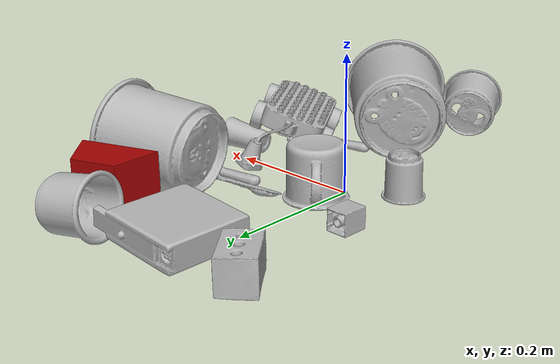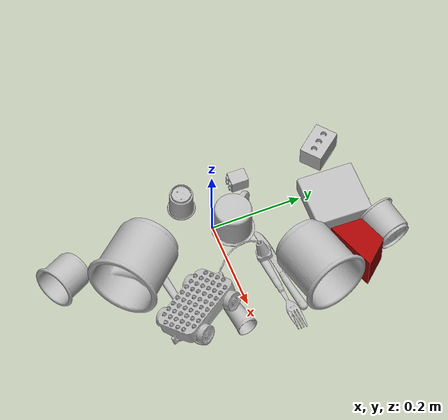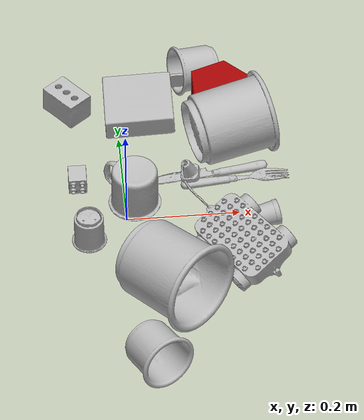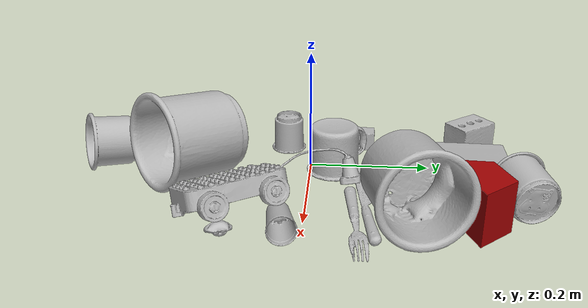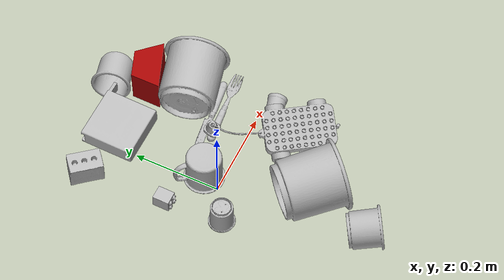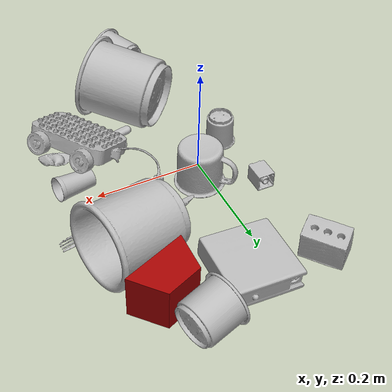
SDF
<sdf version="1.4">
  <world name="default">
    <light name="light1" type="point">
      <pose>0 0 1 0 0 0</pose>
      <diffuse>3 3 3 1</diffuse>
      <specular>3 3 3 1</specular>
    </light>
    <light name="light2" type="point">
      <pose>0 0.5 2 0 0 0</pose>
      <diffuse>1 1 1 1</diffuse>
      <specular>1 1 1 1</specular>
    </light>
    <light name="light3" type="point">
      <pose>0 0.5 2 0 0 0</pose>
      <diffuse>3 3 3 1</diffuse>
      <specular>3 3 3 1</specular>
    </light>
    <scene>
      <ambient>0.7 0.7 0.7</ambient>
    </scene>
    <model name="cup1">
      <link name="link_cup1">
        <collision name="default">
          <geometry>
            <mesh>
              <uri>model://i_cups/collision_meshes/collision.obj</uri>
              <scale>1.0 1.0 1.0</scale>
            </mesh>
          </geometry>
          <surface>
            <friction>
              <ode>
                <mu>0.5</mu>
                <mu2>0.5</mu2>
              </ode>
            </friction>
          <contact>
        <ode>
            <max_vel>0</max_vel>
            <min_depth>0.0001</min_depth>
            <kp>1e8</kp>
        </ode>
    </contact></surface>
        </collision>
        <visual name="default">
          <geometry>
            <mesh>
              <uri>model://i_cups/visual_meshes/visual.dae</uri>
              <scale>1.0 1.0 1.0</scale>
            </mesh>
          </geometry>
        </visual>
        <inertial>
          <mass>0.06118306145071983</mass>
          <pose>0.00011240330786677077 0.00016797454736661166 -0.0008579033892601728 -0.02898356853937009 -0.0398729445813228 -0.3459020996231002</pose>
          <inertia>
            <ixx>8.470886e-05</ixx>
            <iyy>8.5455235e-05</iyy>
            <izz>9.467588e-05</izz>
            <ixy>0</ixy>
            <ixz>0</ixz>
            <iyz>0</iyz>
          </inertia>
        </inertial>
      </link>
      <pose>0.023984933272004128 -0.3410205841064453 0.0448826402425766 -1.4534786258669343 0.06790330450709484 -2.6246267968031316</pose>
    </model>
    <model name="silverware1">
      <link name="link_silverware1">
        <collision name="default">
          <geometry>
            <mesh>
              <uri>model://fork/collision_meshes/collision.obj</uri>
              <scale>1.0 1.0 1.0</scale>
            </mesh>
          </geometry>
          <surface>
            <friction>
              <ode>
                <mu>0.5</mu>
                <mu2>0.5</mu2>
              </ode>
            </friction>
          <contact>
        <ode>
            <max_vel>0</max_vel>
            <min_depth>0.0001</min_depth>
            <kp>1e8</kp>
        </ode>
    </contact></surface>
        </collision>
        <visual name="default">
          <geometry>
            <mesh>
              <uri>model://fork/visual_meshes/visual.dae</uri>
              <scale>1.0 1.0 1.0</scale>
            </mesh>
          </geometry>
        </visual>
        <inertial>
          <mass>0.031184576451778412</mass>
          <pose>-0.02957005426287651 0.00046588247641921043 0.0003218861820641905 -0.013551007459636681 -0.010977840933376642 0.014453907264632249</pose>
          <inertia>
            <ixx>1.0931959e-06</ixx>
            <iyy>8.1413935e-05</iyy>
            <izz>8.1902916e-05</izz>
            <ixy>0</ixy>
            <ixz>0</ixz>
            <iyz>0</iyz>
          </inertia>
        </inertial>
      </link>
      <pose>0.19987256824970245 0.07823167741298676 0.007446604780852795 -3.0635083059822805 0.002835698766743994 0.09765352093938312</pose>
    </model>
    <model name="cup2">
      <link name="link_cup2">
        <collision name="default">
          <geometry>
            <mesh>
              <uri>model://cup_small/collision_meshes/collision.obj</uri>
              <scale>1.0 1.0 1.0</scale>
            </mesh>
          </geometry>
          <surface>
            <friction>
              <ode>
                <mu>0.5</mu>
                <mu2>0.5</mu2>
              </ode>
            </friction>
          <contact>
        <ode>
            <max_vel>0</max_vel>
            <min_depth>0.0001</min_depth>
            <kp>1e8</kp>
        </ode>
    </contact></surface>
        </collision>
        <visual name="default">
          <geometry>
            <mesh>
              <uri>model://cup_small/visual_meshes/visual.dae</uri>
              <scale>1.0 1.0 1.0</scale>
            </mesh>
          </geometry>
        </visual>
        <inertial>
          <mass>0.03407767415046692</mass>
          <pose>0.0001048250705935061 -0.00033778452780097723 -0.010742825455963612 -0.011493231776776816 -0.015280154496379641 -0.5058119732839097</pose>
          <inertia>
            <ixx>2.0064415e-05</ixx>
            <iyy>2.0167918e-05</iyy>
            <izz>9.059144e-06</izz>
            <ixy>0</ixy>
            <ixz>0</ixz>
            <iyz>0</iyz>
          </inertia>
        </inertial>
      </link>
      <pose>0.23066630959510803 -0.0308545995503664 0.020199526101350784 -1.246867433727337 -1.308376111507261 -1.6937306329520936</pose>
    </model>
    <model name="silverware2">
      <link name="link_silverware2">
        <collision name="default">
          <geometry>
            <mesh>
              <uri>model://spoon/collision_meshes/collision.obj</uri>
              <scale>1.0 1.0 1.0</scale>
            </mesh>
          </geometry>
          <surface>
            <friction>
              <ode>
                <mu>0.5</mu>
                <mu2>0.5</mu2>
              </ode>
            </friction>
          <contact>
        <ode>
            <max_vel>0</max_vel>
            <min_depth>0.0001</min_depth>
            <kp>1e8</kp>
        </ode>
    </contact></surface>
        </collision>
        <visual name="default">
          <geometry>
            <mesh>
              <uri>model://spoon/visual_meshes/visual.dae</uri>
              <scale>1.0 1.0 1.0</scale>
            </mesh>
          </geometry>
        </visual>
        <inertial>
          <mass>0.016614587977528572</mass>
          <pose>-0.005526317749172449 -0.0016034182626754045 -0.0007271657232195139 0.03521671066550848 -0.039065848782153245 0.0061506117821598484</pose>
          <inertia>
            <ixx>9.241303e-07</ixx>
            <iyy>6.321795e-05</iyy>
            <izz>6.367369e-05</izz>
            <ixy>0</ixy>
            <ixz>0</ixz>
            <iyz>0</iyz>
          </inertia>
        </inertial>
      </link>
      <pose>0.17396384477615356 -0.12731124460697174 0.00838526152074337 0.006731799165566127 0.026892982971795036 0.14841687787873523</pose>
    </model>
    <model name="cup3">
      <link name="link_cup3">
        <collision name="default">
          <geometry>
            <mesh>
              <uri>model://mug/collision_meshes/collision.obj</uri>
              <scale>1.0 1.0 1.0</scale>
            </mesh>
          </geometry>
          <surface>
            <friction>
              <ode>
                <mu>0.5</mu>
                <mu2>0.5</mu2>
              </ode>
            </friction>
          <contact>
        <ode>
            <max_vel>0</max_vel>
            <min_depth>0.0001</min_depth>
            <kp>1e8</kp>
        </ode>
    </contact></surface>
        </collision>
        <visual name="default">
          <geometry>
            <mesh>
              <uri>model://mug/visual_meshes/visual.dae</uri>
              <scale>1.0 1.0 1.0</scale>
            </mesh>
          </geometry>
        </visual>
        <inertial>
          <mass>0.2187051922082901</mass>
          <pose>0.009571668691933155 0.0008143252925947309 -0.0109473317861557 -0.1298317614392908 0.08737757629698793 0.05507296169044089</pose>
          <inertia>
            <ixx>0.00021724429</ixx>
            <iyy>0.00024264908</iyy>
            <izz>0.00028062687</izz>
            <ixy>0</ixy>
            <ixz>0</ixz>
            <iyz>0</iyz>
          </inertia>
        </inertial>
      </link>
      <pose>0.009823460131883621 0.04970918595790863 0.04095802456140518 -3.1415925762280463 1.1376814000553074e-07 -0.8026903045059199</pose>
    </model>
    <model name="silverware3">
      <link name="link_silverware3">
        <collision name="default">
          <geometry>
            <mesh>
              <uri>model://knife/collision_meshes/collision.obj</uri>
              <scale>1.0 1.0 1.0</scale>
            </mesh>
          </geometry>
          <surface>
            <friction>
              <ode>
                <mu>0.5</mu>
                <mu2>0.5</mu2>
              </ode>
            </friction>
          <contact>
        <ode>
            <max_vel>0</max_vel>
            <min_depth>0.0001</min_depth>
            <kp>1e8</kp>
        </ode>
    </contact></surface>
        </collision>
        <visual name="default">
          <geometry>
            <mesh>
              <uri>model://knife/visual_meshes/visual.dae</uri>
              <scale>1.0 1.0 1.0</scale>
            </mesh>
          </geometry>
        </visual>
        <inertial>
          <mass>0.02527560666203499</mass>
          <pose>-0.02378525398671627 0.0015275124460458755 5.062016498413868e-05 0.07305987488321217 0.01724841707462807 -0.007409821427235137</pose>
          <inertia>
            <ixx>7.174241e-07</ixx>
            <iyy>9.710476e-05</iyy>
            <izz>9.733581e-05</izz>
            <ixy>0</ixy>
            <ixz>0</ixz>
            <iyz>0</iyz>
          </inertia>
        </inertial>
      </link>
      <pose>0.15397314727306366 0.09536176174879074 0.0081368088722229 -0.28174923345852976 -0.00887165238045548 -3.0138020908159313</pose>
    </model>
    <model name="cup4">
      <link name="link_cup4">
        <collision name="default">
          <geometry>
            <mesh>
              <uri>model://f_cups/collision_meshes/collision.obj</uri>
              <scale>2.0 2.0 2.0</scale>
            </mesh>
          </geometry>
          <surface>
            <friction>
              <ode>
                <mu>0.5</mu>
                <mu2>0.5</mu2>
              </ode>
            </friction>
          <contact>
        <ode>
            <max_vel>0</max_vel>
            <min_depth>0.0001</min_depth>
            <kp>1e8</kp>
        </ode>
    </contact></surface>
        </collision>
        <visual name="default">
          <geometry>
            <mesh>
              <uri>model://f_cups/visual_meshes/visual.dae</uri>
              <scale>2.0 2.0 2.0</scale>
            </mesh>
          </geometry>
        </visual>
        <inertial>
          <mass>0.45639780163764954</mass>
          <pose>-0.006342936772853136 -0.0012480145087465644 -0.007311072666198015 0.7862311529960513 -0.2607925047248709 -0.18237200478465204</pose>
          <inertia>
            <ixx>0.0017161043</ixx>
            <iyy>0.0018002132</iyy>
            <izz>0.0018740727</izz>
            <ixy>0</ixy>
            <ixz>0</ixz>
            <iyz>0</iyz>
          </inertia>
        </inertial>
      </link>
      <pose>0.061430759727954865 -0.19339397549629211 0.07437169551849365 -0.550906856239602 -1.4612377477990888 2.8685652260772128</pose>
    </model>
    <model name="cup41">
      <link name="link_cup41">
        <collision name="default">
          <geometry>
            <mesh>
              <uri>model://b_cups/collision_meshes/collision.obj</uri>
              <scale>1.0 1.0 1.0</scale>
            </mesh>
          </geometry>
          <surface>
            <friction>
              <ode>
                <mu>0.5</mu>
                <mu2>0.5</mu2>
              </ode>
            </friction>
          <contact>
        <ode>
            <max_vel>0</max_vel>
            <min_depth>0.0001</min_depth>
            <kp>1e8</kp>
        </ode>
    </contact></surface>
        </collision>
        <visual name="default">
          <geometry>
            <mesh>
              <uri>model://b_cups/visual_meshes/visual.dae</uri>
              <scale>1.0 1.0 1.0</scale>
            </mesh>
          </geometry>
        </visual>
        <inertial>
          <mass>0.02191556617617607</mass>
          <pose>0.0005182005115784705 0.0018058598507195711 -0.0013381809694692492 0.11356347292067202 0.038725069075056226 -0.34569439603942165</pose>
          <inertia>
            <ixx>1.4345273e-05</ixx>
            <iyy>1.4072923e-05</iyy>
            <izz>1.2071279e-05</izz>
            <ixy>0</ixy>
            <ixz>0</ixz>
            <iyz>0</iyz>
          </inertia>
        </inertial>
      </link>
      <pose>-0.06858638674020767 -0.04432455077767372 0.03215507045388222 3.141582657036547 3.7445203853732222e-06 2.3700459230966295</pose>
    </model>
    <model name="cup5">
      <link name="link_cup5">
        <collision name="default">
          <geometry>
            <mesh>
              <uri>model://e_cups/collision_meshes/collision.obj</uri>
              <scale>2.0 2.0 2.0</scale>
            </mesh>
          </geometry>
          <surface>
            <friction>
              <ode>
                <mu>0.5</mu>
                <mu2>0.5</mu2>
              </ode>
            </friction>
          <contact>
        <ode>
            <max_vel>0</max_vel>
            <min_depth>0.0001</min_depth>
            <kp>1e8</kp>
        </ode>
    </contact></surface>
        </collision>
        <visual name="default">
          <geometry>
            <mesh>
              <uri>model://e_cups/visual_meshes/visual.dae</uri>
              <scale>2.0 2.0 2.0</scale>
            </mesh>
          </geometry>
        </visual>
        <inertial>
          <mass>0.30448246002197266</mass>
          <pose>0.0022711469791829586 0.005759572610259056 -0.00776594178751111 0.6952384510578399 0.08767941436067322 -0.5235260729612989</pose>
          <inertia>
            <ixx>0.0010739095</ixx>
            <iyy>0.001122389</iyy>
            <izz>0.0010267813</izz>
            <ixy>0</ixy>
            <ixz>0</ixz>
            <iyz>0</iyz>
          </inertia>
        </inertial>
      </link>
      <pose>0.19590112566947937 0.15994280576705933 0.06980304419994354 1.298858405585547 1.2530543600741362 1.5570173361649433</pose>
    </model>
    <model name="cup51">
      <link name="link_cup51">
        <collision name="default">
          <geometry>
            <mesh>
              <uri>model://h_cups/collision_meshes/collision.obj</uri>
              <scale>1.0 1.0 1.0</scale>
            </mesh>
          </geometry>
          <surface>
            <friction>
              <ode>
                <mu>0.5</mu>
                <mu2>0.5</mu2>
              </ode>
            </friction>
          <contact>
        <ode>
            <max_vel>0</max_vel>
            <min_depth>0.0001</min_depth>
            <kp>1e8</kp>
        </ode>
    </contact></surface>
        </collision>
        <visual name="default">
          <geometry>
            <mesh>
              <uri>model://h_cups/visual_meshes/visual.dae</uri>
              <scale>1.0 1.0 1.0</scale>
            </mesh>
          </geometry>
        </visual>
        <inertial>
          <mass>0.042455922812223434</mass>
          <pose>-2.703044083318673e-05 0.00023018660431262106 -0.0018405403243377805 -0.024361995264993386 0.06545231449212868 0.1288536550905752</pose>
          <inertia>
            <ixx>5.4829856e-05</ixx>
            <iyy>5.4175573e-05</iyy>
            <izz>5.7501496e-05</izz>
            <ixy>0</ixy>
            <ixz>0</ixz>
            <iyz>0</iyz>
          </inertia>
        </inertial>
      </link>
      <pose>0.15049311518669128 0.33359605073928833 0.04239671677350998 -0.7905210139745811 -1.4206910989226373 1.0630295746629195</pose>
    </model>
    <model name="toy1">
      <link name="link_toy1">
        <collision name="default">
          <geometry>
            <mesh>
              <uri>model://f_lego_duplo/collision_meshes/collision.obj</uri>
              <scale>1.0 1.0 1.0</scale>
            </mesh>
          </geometry>
          <surface>
            <friction>
              <ode>
                <mu>0.5</mu>
                <mu2>0.5</mu2>
              </ode>
            </friction>
          <contact>
        <ode>
            <max_vel>0</max_vel>
            <min_depth>0.0001</min_depth>
            <kp>1e8</kp>
        </ode>
    </contact></surface>
        </collision>
        <visual name="default">
          <geometry>
            <mesh>
              <uri>model://f_lego_duplo/visual_meshes/visual.dae</uri>
              <scale>1.0 1.0 1.0</scale>
            </mesh>
          </geometry>
        </visual>
        <inertial>
          <mass>0.02241816557943821</mass>
          <pose>2.3694117771810852e-05 0.0001339316659141332 0.0018837875686585903 0.029838520561624126 -0.014425134948969536 -0.6756620822172864</pose>
          <inertia>
            <ixx>4.7370827e-06</ixx>
            <iyy>4.779284e-06</iyy>
            <izz>4.1119874e-06</izz>
            <ixy>0</ixy>
            <ixz>0</ixz>
            <iyz>0</iyz>
          </inertia>
        </inertial>
      </link>
      <pose>-0.08111685514450073 0.08879052847623825 0.016207220032811165 1.5789870798869279 0.00015286266785618672 -0.005625284331358153</pose>
    </model>
    <model name="toy2">
      <link name="link_toy2">
        <collision name="default">
          <geometry>
            <mesh>
              <uri>model://nine_hole_peg_test/collision_meshes/collision.obj</uri>
              <scale>1.0 1.0 1.0</scale>
            </mesh>
          </geometry>
          <surface>
            <friction>
              <ode>
                <mu>0.5</mu>
                <mu2>0.5</mu2>
              </ode>
            </friction>
          <contact>
        <ode>
            <max_vel>0</max_vel>
            <min_depth>0.0001</min_depth>
            <kp>1e8</kp>
        </ode>
    </contact></surface>
        </collision>
        <visual name="default">
          <geometry>
            <mesh>
              <uri>model://nine_hole_peg_test/visual_meshes/visual.dae</uri>
              <scale>1.0 1.0 1.0</scale>
            </mesh>
          </geometry>
        </visual>
        <inertial>
          <mass>0.9336897134780884</mass>
          <pose>-0.004617386497557163 -0.009647615253925323 2.6460686058271676e-05 -0.0014666796876693252 0.0007194179493738156 -0.6342417556307235</pose>
          <inertia>
            <ixx>0.0014599775</ixx>
            <iyy>0.0013631656</iyy>
            <izz>0.0025583105</izz>
            <ixy>0</ixy>
            <ixz>0</ixz>
            <iyz>0</iyz>
          </inertia>
        </inertial>
      </link>
      <pose>0.05201655626296997 0.26960280537605286 0.02459060400724411 3.0884309084332275 -0.00044033011699854123 1.5423079995419555</pose>
    </model>
    <model name="toy3">
      <link name="link_toy3">
        <collision name="default">
          <geometry>
            <mesh>
              <uri>model://prism/collision_meshes/collision.obj</uri>
              <scale>1.0 1.0 1.0</scale>
            </mesh>
          </geometry>
          <surface>
            <friction>
              <ode>
                <mu>0.5</mu>
                <mu2>0.5</mu2>
              </ode>
            </friction>
          <contact>
        <ode>
            <max_vel>0</max_vel>
            <min_depth>0.0001</min_depth>
            <kp>1e8</kp>
        </ode>
    </contact></surface>
        </collision>
        <visual name="default">
          <geometry>
            <mesh>
              <uri>model://prism/visual_meshes/visual.dae</uri>
              <scale>1.0 1.0 1.0</scale>
            </mesh>
          </geometry>
        </visual>
        <inertial>
          <mass>0.45664992928504944</mass>
          <pose>-9.85359656624496e-05 -4.96157269935793e-07 -0.0033869100734591484 0.0 0.006559178903460961 0.0</pose>
          <inertia>
            <ixx>0.0004121209</ixx>
            <iyy>0.00049805344</iyy>
            <izz>0.0006100559</izz>
            <ixy>0</ixy>
            <ixz>0</ixz>
            <iyz>0</iyz>
          </inertia>
        </inertial>
      </link>
      <pose>0.1829337626695633 0.2641875445842743 0.04158852621912956 1.583636583109559 9.076387257057084e-07 -2.778773767933062</pose>
    </model>
    <model name="toy4">
      <link name="link_toy4">
        <collision name="default">
          <geometry>
            <mesh>
              <uri>model://g_lego_duplo/collision_meshes/collision.obj</uri>
              <scale>1.0 1.0 1.0</scale>
            </mesh>
          </geometry>
          <surface>
            <friction>
              <ode>
                <mu>0.5</mu>
                <mu2>0.5</mu2>
              </ode>
            </friction>
          <contact>
        <ode>
            <max_vel>0</max_vel>
            <min_depth>0.0001</min_depth>
            <kp>1e8</kp>
        </ode>
    </contact></surface>
        </collision>
        <visual name="default">
          <geometry>
            <mesh>
              <uri>model://g_lego_duplo/visual_meshes/visual.dae</uri>
              <scale>1.0 1.0 1.0</scale>
            </mesh>
          </geometry>
        </visual>
        <inertial>
          <mass>0.39620378613471985</mass>
          <pose>-0.05004769191145897 0.0017554654041305184 0.003880677744746208 0.010963058510667364 0.03810828654928447 -0.09653021192595126</pose>
          <inertia>
            <ixx>0.0005741041</ixx>
            <iyy>0.0017357017</iyy>
            <izz>0.0021714251</izz>
            <ixy>0</ixy>
            <ixz>0</ixz>
            <iyz>0</iyz>
          </inertia>
        </inertial>
      </link>
      <pose>0.1629035770893097 -0.05715494975447655 0.04911036789417267 -0.34047435514227026 1.165936868478507e-05 2.1553880012276494</pose>
    </model>
    <model name="toy5">
      <link name="link_toy5">
        <collision name="default">
          <geometry>
            <mesh>
              <uri>model://foam_brick/collision_meshes/collision.obj</uri>
              <scale>1.0 1.0 1.0</scale>
            </mesh>
          </geometry>
          <surface>
            <friction>
              <ode>
                <mu>0.5</mu>
                <mu2>0.5</mu2>
              </ode>
            </friction>
          <contact>
        <ode>
            <max_vel>0</max_vel>
            <min_depth>0.0001</min_depth>
            <kp>1e8</kp>
        </ode>
    </contact></surface>
        </collision>
        <visual name="default">
          <geometry>
            <mesh>
              <uri>model://foam_brick/visual_meshes/visual.dae</uri>
              <scale>1.0 1.0 1.0</scale>
            </mesh>
          </geometry>
        </visual>
        <inertial>
          <mass>0.10564772039651871</mass>
          <pose>-0.00025224717683158815 0.00034584361128509045 -0.00025321010616607964 -0.29402271699624904 0.017274444128295662 -0.0007449905040366932</pose>
          <inertia>
            <ixx>4.6148893e-05</ixx>
            <iyy>7.367908e-05</iyy>
            <izz>7.4615455e-05</izz>
            <ixy>0</ixy>
            <ixz>0</ixz>
            <iyz>0</iyz>
          </inertia>
        </inertial>
      </link>
      <pose>-0.08854611963033676 0.28154513239860535 0.025922803208231926 0.013417010640822551 0.0041524720699810105 2.256426353371659</pose>
    </model>
  <physics type="ode">
      <max_contacts>50</max_contacts>
      <ode>
        <solver>
          <type>quick</type>
          <iters>75</iters>
        </solver>
        <constraints>
          <contact_max_correcting_vel>0</contact_max_correcting_vel>
          <contact_surface_layer>0</contact_surface_layer>
        </constraints>
      </ode>
    </physics></world>
</sdf>
